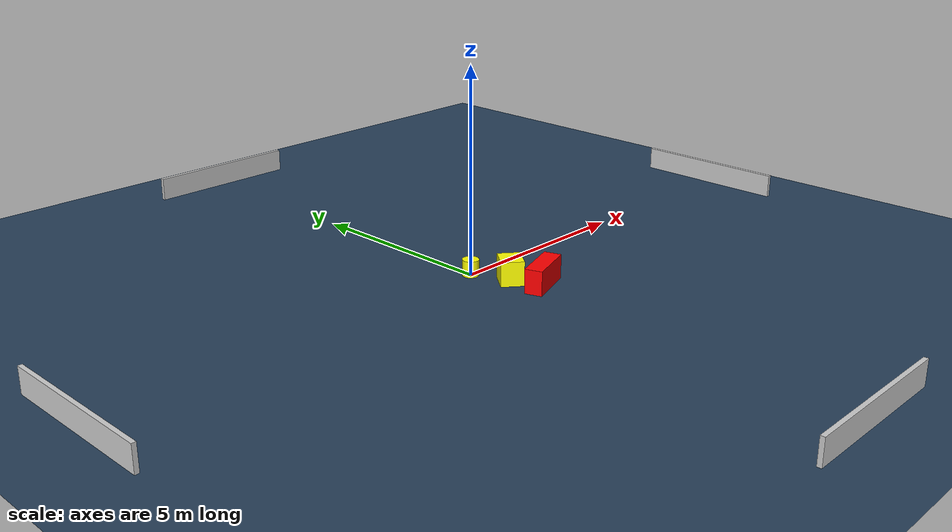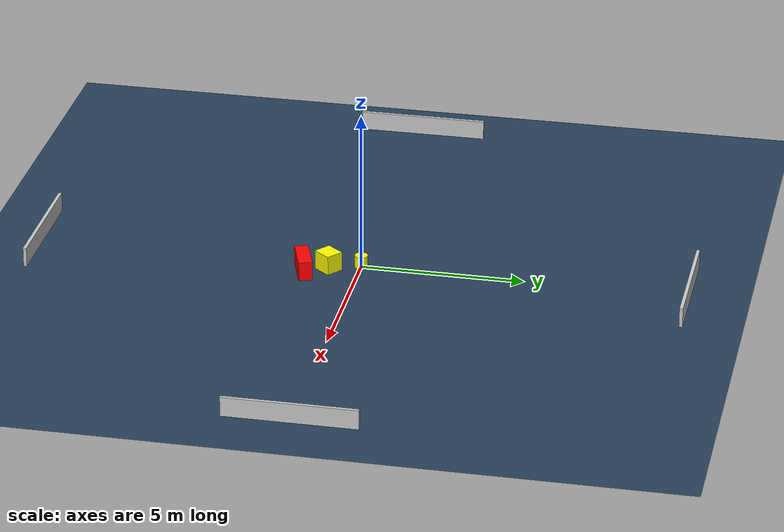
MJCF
<?xml version="1.0" ?>
<mujoco model="generated_environment">
  <option timestep="0.01" integrator="RK4" cone="elliptic"/>
  <default>
    <geom density="1"/>
  </default>
  <asset>
    <texture builtin="gradient" height="3072" name="skybox" rgb1="0.3 0.5 0.7" rgb2="0 0 0" type="skybox" width="512"/>
    <texture builtin="checker" height="300" name="groundplane" rgb1="0.2 0.3 0.4" rgb2="0.1 0.2 0.3" type="2d" width="300"/>
    <material name="groundplane" reflectance="0.2" texrepeat="5 5" texture="groundplane"/>
  </asset>
  <worldbody>
    <light dir="0 0 -1" directional="true" pos="0 0 1.5"/>
    <geom condim="3" friction="0.5 0.005 0.001" material="groundplane" name="floor" pos="0 0 0" size="0 0 0.05" type="plane"/>
    <body name="walls">
      <geom name="wall_1" condim="4" pos="-10.0 0.0 0.3" rgba="0.800000011920929 0.800000011920929 0.800000011920929 1.0" size="0.05 2.0 0.3" type="box"/>
      <geom name="wall_2" condim="4" pos="10.0 0.0 0.3" rgba="0.800000011920929 0.800000011920929 0.800000011920929 1.0" size="0.05 2.0 0.3" type="box"/>
      <geom name="wall_3" condim="4" pos="0.0 -10.0 0.3" rgba="0.800000011920929 0.800000011920929 0.800000011920929 1.0" size="2.0 0.05 0.3" type="box"/>
      <geom name="wall_4" condim="4" pos="0.0 10.0 0.3" rgba="0.800000011920929 0.800000011920929 0.800000011920929 1.0" size="2.0 0.05 0.3" type="box"/>
    </body>
    <body name="robot">
      <joint name="joint_x" type="slide" pos="0 0 0" axis="1 0 0"/>
      <joint name="joint_y" type="slide" pos="0 0 0" axis="0 1 0"/>
      <geom name="robot" type="cylinder" pos="0.0 0.0 0.2" size="0.2 0.2 0.0" mass="5.0" friction="1.0 0.005 0.0001" condim="4" rgba="1.0 1.0 0.0 1.0"/>
    </body>
    <body name="obstacle_1_movable">
      <geom name="obstacle_1_movable" condim="4" pos="0.34862704148577667 -0.9419172285141608 0.3" euler="0 0 231.5250706639912" friction="0.0 0.005 0.001" rgba="1.0 1.0 0.0 1.0" size="0.30272646411887766 0.27583587043125657 0.3" type="box" mass="0.1"/>
      <joint type="free"/>
    </body>
    <body name="obstacle_2_static">
      <geom name="obstacle_2_static" condim="4" pos="0.67875315879597 -1.6433752823386067 0.3" euler="0 0 198.76476481814632" friction="0.0 0.005 0.001" rgba="1.0 0.0 0.0 1.0" size="0.5915355805815964 0.21093160002694508 0.3" type="box"/>
    </body>
  </worldbody>
  <actuator>
    <motor name="actuator_x" joint="joint_x" gear="1" ctrlrange="-1 1"/>
    <motor name="actuator_y" joint="joint_y" gear="1" ctrlrange="-1 1"/>
  </actuator>
</mujoco>
